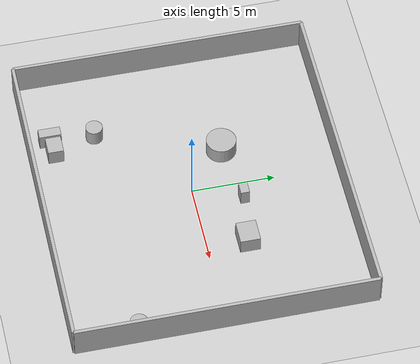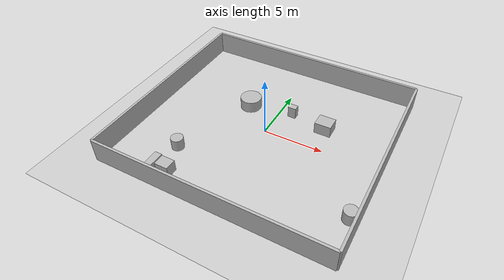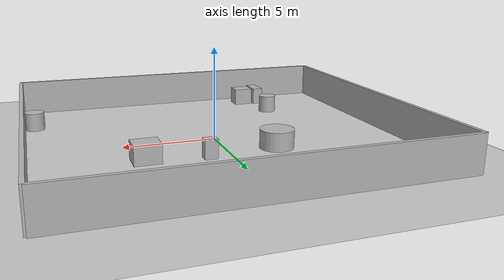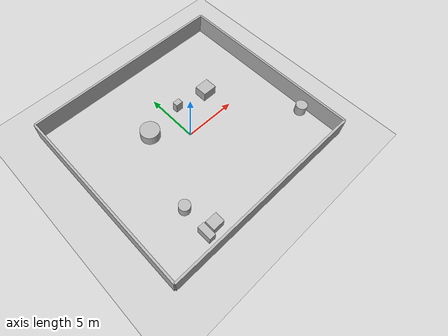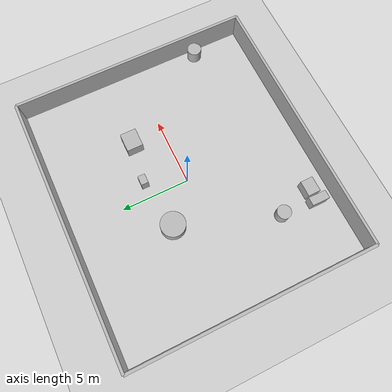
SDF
<?xml version="1.0"?>
<sdf version="1.6">
  <world name="env_84">

    <include><uri>model://ground_plane</uri></include>
    <include><uri>model://sun</uri></include>

    <!-- WALLS -->
    <model name="wall_north"><static>true</static><pose>0 8.881004702384605 1 0 0 0</pose>
      <link name="link"><collision name="collision">
        <geometry><box><size>19.585462379704595 0.2 2</size></box></geometry>
      </collision><visual name="visual">
        <geometry><box><size>19.585462379704595 0.2 2</size></box></geometry>
      </visual></link>
    </model>

    <model name="wall_south"><static>true</static><pose>0 -8.881004702384605 1 0 0 0</pose>
      <link name="link"><collision name="collision">
        <geometry><box><size>19.585462379704595 0.2 2</size></box></geometry>
      </collision><visual name="visual">
        <geometry><box><size>19.585462379704595 0.2 2</size></box></geometry>
      </visual></link>
    </model>

    <model name="wall_east"><static>true</static><pose>9.792731189852297 0 1 0 0 1.57</pose>
      <link name="link"><collision name="collision">
        <geometry><box><size>17.76200940476921 0.2 2</size></box></geometry>
      </collision><visual name="visual">
        <geometry><box><size>17.76200940476921 0.2 2</size></box></geometry>
      </visual></link>
    </model>

    <model name="wall_west"><static>true</static><pose>-9.792731189852297 0 1 0 0 1.57</pose>
      <link name="link"><collision name="collision">
        <geometry><box><size>17.76200940476921 0.2 2</size></box></geometry>
      </collision><visual name="visual">
        <geometry><box><size>17.76200940476921 0.2 2</size></box></geometry>
      </visual></link>
    </model>

    <!-- SENSOR -->

    <model name="lidar_sensor">
      <static>true</static>
      <pose>3.0531955267853323 -2.8705737400673756 0.4 0 0 0</pose>
      <link name="link">
        <sensor name="lidar" type="ray">
          <pose>0 0 0 0 0 0</pose>
          <visualize>true</visualize>
          <always_on>true</always_on>
          <update_rate>10</update_rate>
          <ray>
            <scan><horizontal>
              <samples>720</samples>
              <resolution>1</resolution>
              <min_angle>-3.14159</min_angle>
              <max_angle>3.14159</max_angle>
            </horizontal></scan>
            <range><min>0.15</min><max>20.0</max><resolution>0.01</resolution></range>
          </ray>
          <plugin name="lidar_plugin" filename="liblidar_plugin.so"/>
        </sensor>
      </link>
    </model>

    <!-- OBSTACLES -->

    <model name="obstacle_0">
      <static>true</static>
      <pose>-5.168506400545904 -4.847293678248626 0.5 0 0 0</pose>
      <link name="link">
        <collision name="collision">
          <geometry><cylinder><radius>0.51</radius><length>1.0</length></cylinder></geometry>
        </collision>
        <visual name="visual">
          <geometry><cylinder><radius>0.51</radius><length>1.0</length></cylinder></geometry>
        </visual>
      </link>
    </model>

    <model name="obstacle_1">
      <static>true</static>
      <pose>1.1392413551524747 2.887270082169863 0.5 0 0 0</pose>
      <link name="link">
        <collision name="collision">
          <geometry><box><size>0.69 0.53 1.0</size></box></geometry>
        </collision>
        <visual name="visual">
          <geometry><box><size>0.69 0.53 1.0</size></box></geometry>
        </visual>
      </link>
    </model>

    <model name="obstacle_2">
      <static>true</static>
      <pose>-5.343667376086506 -7.508836842091953 0.5 0 0 0</pose>
      <link name="link">
        <collision name="collision">
          <geometry><box><size>0.61 1.32 1.0</size></box></geometry>
        </collision>
        <visual name="visual">
          <geometry><box><size>0.61 1.32 1.0</size></box></geometry>
        </visual>
      </link>
    </model>

    <model name="obstacle_3">
      <static>true</static>
      <pose>9.15250704817193 -5.013823510889628 0.5 0 0 0</pose>
      <link name="link">
        <collision name="collision">
          <geometry><cylinder><radius>0.53</radius><length>1.0</length></cylinder></geometry>
        </collision>
        <visual name="visual">
          <geometry><cylinder><radius>0.53</radius><length>1.0</length></cylinder></geometry>
        </visual>
      </link>
    </model>

    <model name="obstacle_4">
      <static>true</static>
      <pose>4.247688883821233 2.420389012623282 0.5 0 0 0</pose>
      <link name="link">
        <collision name="collision">
          <geometry><box><size>1.39 1.19 1.0</size></box></geometry>
        </collision>
        <visual name="visual">
          <geometry><box><size>1.39 1.19 1.0</size></box></geometry>
        </visual>
      </link>
    </model>

    <model name="obstacle_5">
      <static>true</static>
      <pose>-2.638284741018742 2.3453872520510526 0.5 0 0 0</pose>
      <link name="link">
        <collision name="collision">
          <geometry><cylinder><radius>0.9</radius><length>1.0</length></cylinder></geometry>
        </collision>
        <visual name="visual">
          <geometry><cylinder><radius>0.9</radius><length>1.0</length></cylinder></geometry>
        </visual>
      </link>
    </model>

    <model name="obstacle_6">
      <static>true</static>
      <pose>-4.362735567142407 -7.392011132351232 0.5 0 0 0</pose>
      <link name="link">
        <collision name="collision">
          <geometry><box><size>1.12 0.93 1.0</size></box></geometry>
        </collision>
        <visual name="visual">
          <geometry><box><size>1.12 0.93 1.0</size></box></geometry>
        </visual>
      </link>
    </model>

  </world>
</sdf>
